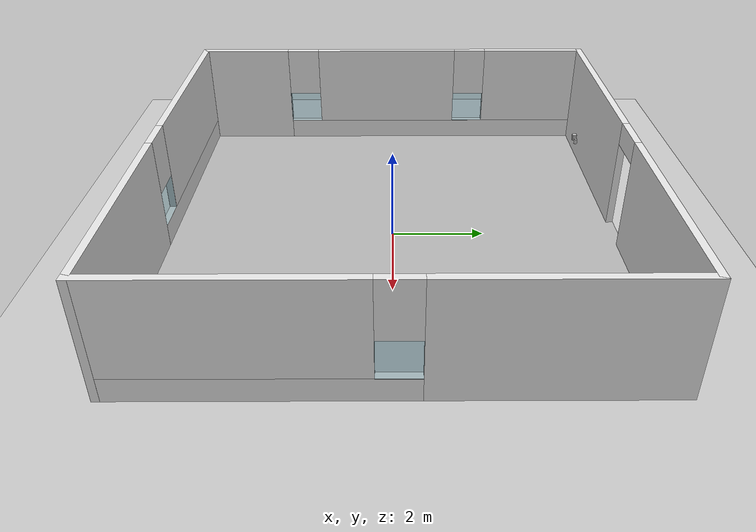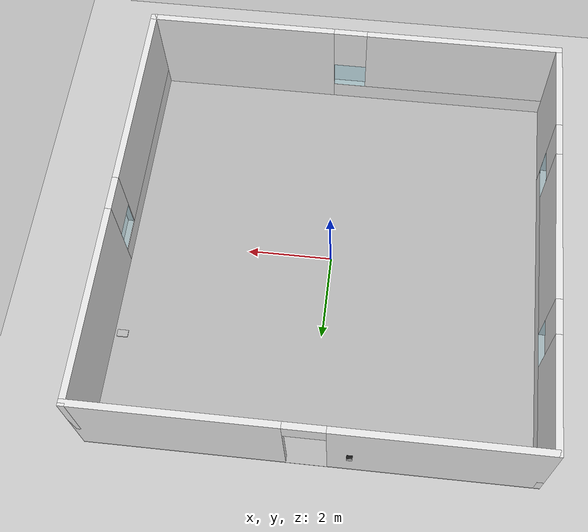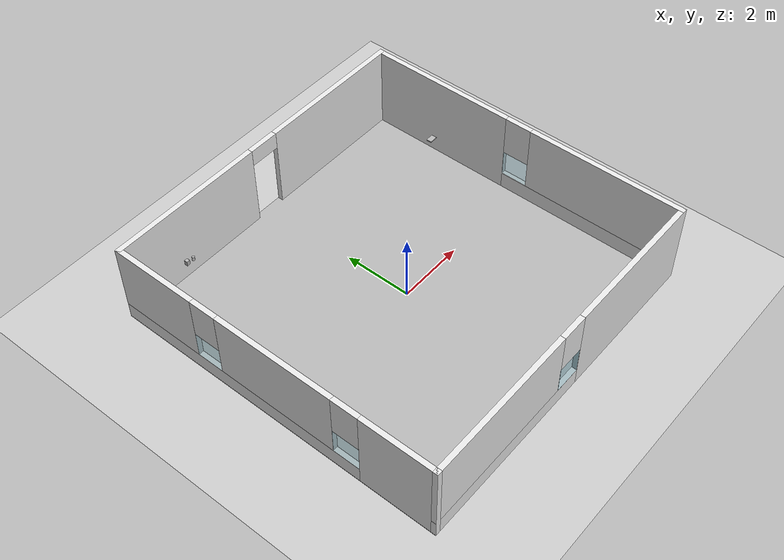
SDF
<sdf version="1.7">
 <world name="default">
  <model name="ground_plane">
   <static>1</static>
   <link name="link">
    <collision name="collision">
     <geometry><plane><normal>0 0 1</normal><size>100 100</size></plane></geometry>
     <surface><friction><ode><mu>100</mu><mu2>50</mu2></ode></friction></surface>
    </collision>
    <visual name="visual">
     <cast_shadows>0</cast_shadows>
     <geometry><plane><normal>0 0 1</normal><size>100 100</size></plane></geometry>
     <material>
      <script><uri>file://media/materials/scripts/gazebo.material</uri><name>Gazebo/Grey</name></script>
     </material>
    </visual>
   </link>
  </model>
  <model name="office_small_1">
   <model name="office_small">
    <pose>0.796663 0.043102 0 0 -0 0</pose>
    <link name="Wall_2">
     <pose>0 4.925 0 0 -0 0</pose>
     <visual name="Wall_2_Visual_0">
      <pose>-2.69024 0 1.25 0 -0 0</pose>
      <geometry><box><size>4.61951 0.15 2.5</size></box></geometry>
      <material>
       <script>
        <uri>model://office_small/materials/scripts</uri>
        <uri>model://office_small/materials/textures</uri>
        <name>wall_white</name>
       </script>
      </material>
     </visual>
     <collision name="Wall_2_Collision_0">
      <geometry><box><size>4.61951 0.15 2.5</size></box></geometry>
      <pose>-2.69024 0 1.25 0 -0 0</pose>
     </collision>
     <visual name="Wall_2_Visual_1">
      <pose>2.75976 0 1.25 0 -0 0</pose>
      <geometry><box><size>4.48049 0.15 2.5</size></box></geometry>
      <material>
       <script>
        <uri>model://office_small/materials/scripts</uri>
        <uri>model://office_small/materials/textures</uri>
        <name>wall_white</name>
       </script>
      </material>
     </visual>
     <collision name="Wall_2_Collision_1">
      <geometry><box><size>4.48049 0.15 2.5</size></box></geometry>
      <pose>2.75976 0 1.25 0 -0 0</pose>
     </collision>
     <visual name="Wall_2_Visual_2">
      <pose>0.06951 0 2.25 0 -0 0</pose>
      <geometry><box><size>0.9 0.15 0.5</size></box></geometry>
      <material>
       <script>
        <uri>model://office_small/materials/scripts</uri>
        <uri>model://office_small/materials/textures</uri>
        <name>wall_white</name>
       </script>
      </material>
     </visual>
     <collision name="Wall_2_Collision_2">
      <geometry><box><size>0.9 0.15 0.5</size></box></geometry>
      <pose>0.06951 0 2.25 0 -0 0</pose>
     </collision>
    </link>
    <link name="Wall_3">
     <pose>4.925 0 0 0 0 -1.5708</pose>
     <visual name="Wall_3_Visual_0">
      <pose>-2.74228 0 1.25 0 -0 0</pose>
      <geometry><box><size>4.51544 0.15 2.5</size></box></geometry>
      <material>
       <script>
        <uri>model://office_small/materials/scripts</uri>
        <uri>model://office_small/materials/textures</uri>
        <name>wall_white</name>
       </script>
      </material>
     </visual>
     <collision name="Wall_3_Collision_0">
      <geometry><box><size>4.51544 0.15 2.5</size></box></geometry>
      <pose>-2.74228 0 1.25 0 -0 0</pose>
     </collision>
     <visual name="Wall_3_Visual_1">
      <pose>2.25772 0 0.25 0 -0 0</pose>
      <geometry><box><size>5.48456 0.15 0.5</size></box></geometry>
      <material>
       <script>
        <uri>model://office_small/materials/scripts</uri>
        <uri>model://office_small/materials/textures</uri>
        <name>wall_white</name>
       </script>
      </material>
     </visual>
     <collision name="Wall_3_Collision_1">
      <geometry><box><size>5.48456 0.15 0.5</size></box></geometry>
      <pose>2.25772 0 0.25 0 -0 0</pose>
     </collision>
     <visual name="Wall_3_Visual_2">
      <pose>2.65772 0 1.5 0 -0 0</pose>
      <geometry><box><size>4.68456 0.15 2</size></box></geometry>
      <material>
       <script>
        <uri>model://office_small/materials/scripts</uri>
        <uri>model://office_small/materials/textures</uri>
        <name>wall_white</name>
       </script>
      </material>
     </visual>
     <collision name="Wall_3_Collision_2">
      <geometry><box><size>4.68456 0.15 2</size></box></geometry>
      <pose>2.65772 0 1.5 0 -0 0</pose>
     </collision>
     <visual name="Wall_3_Visual_3">
      <pose>-0.084559 0 1.9 0 -0 0</pose>
      <geometry><box><size>0.8 0.15 1.2</size></box></geometry>
      <material>
       <script>
        <uri>model://office_small/materials/scripts</uri>
        <uri>model://office_small/materials/textures</uri>
        <name>wall_white</name>
       </script>
      </material>
     </visual>
     <collision name="Wall_3_Collision_3">
      <geometry><box><size>0.8 0.15 1.2</size></box></geometry>
      <pose>-0.084559 0 1.9 0 -0 0</pose>
     </collision>
    </link>
    <link name="Wall_4">
     <pose>0 -4.925 0 0 -0 3.14159</pose>
     <visual name="Wall_4_Visual_0">
      <pose>-2.74632 0 1.25 0 -0 0</pose>
      <geometry><box><size>4.50736 0.15 2.5</size></box></geometry>
      <material>
       <script>
        <uri>model://office_small/materials/scripts</uri>
        <uri>model://office_small/materials/textures</uri>
        <name>wall_white</name>
       </script>
      </material>
     </visual>
     <collision name="Wall_4_Collision_0">
      <geometry><box><size>4.50736 0.15 2.5</size></box></geometry>
      <pose>-2.74632 0 1.25 0 -0 0</pose>
     </collision>
     <visual name="Wall_4_Visual_1">
      <pose>2.25368 0 0.25 0 -0 0</pose>
      <geometry><box><size>5.49264 0.15 0.5</size></box></geometry>
      <material>
       <script>
        <uri>model://office_small/materials/scripts</uri>
        <uri>model://office_small/materials/textures</uri>
        <name>wall_white</name>
       </script>
      </material>
     </visual>
     <collision name="Wall_4_Collision_1">
      <geometry><box><size>5.49264 0.15 0.5</size></box></geometry>
      <pose>2.25368 0 0.25 0 -0 0</pose>
     </collision>
     <visual name="Wall_4_Visual_2">
      <pose>2.65368 0 1.5 0 -0 0</pose>
      <geometry><box><size>4.69264 0.15 2</size></box></geometry>
      <material>
       <script>
        <uri>model://office_small/materials/scripts</uri>
        <uri>model://office_small/materials/textures</uri>
        <name>wall_white</name>
       </script>
      </material>
     </visual>
     <collision name="Wall_4_Collision_2">
      <geometry><box><size>4.69264 0.15 2</size></box></geometry>
      <pose>2.65368 0 1.5 0 -0 0</pose>
     </collision>
     <visual name="Wall_4_Visual_3">
      <pose>-0.09264 0 1.9 0 -0 0</pose>
      <geometry><box><size>0.8 0.15 1.2</size></box></geometry>
      <material>
       <script>
        <uri>model://office_small/materials/scripts</uri>
        <uri>model://office_small/materials/textures</uri>
        <name>wall_white</name>
       </script>
      </material>
     </visual>
     <collision name="Wall_4_Collision_3">
      <geometry><box><size>0.8 0.15 1.2</size></box></geometry>
      <pose>-0.09264 0 1.9 0 -0 0</pose>
     </collision>
    </link>
    <link name="Wall_5">
     <pose>-4.925 0 0 0 -0 1.5708</pose>
     <visual name="Wall_5_Visual_0">
      <pose>-3.88364 0 1.25 0 -0 0</pose>
      <geometry><box><size>2.23271 0.15 2.5</size></box></geometry>
      <material>
       <script>
        <uri>model://office_small/materials/scripts</uri>
        <uri>model://office_small/materials/textures</uri>
        <name>wall_white</name>
       </script>
      </material>
     </visual>
     <collision name="Wall_5_Collision_0">
      <geometry><box><size>2.23271 0.15 2.5</size></box></geometry>
      <pose>-3.88364 0 1.25 0 -0 0</pose>
     </collision>
     <visual name="Wall_5_Visual_1">
      <pose>1.11636 0 0.25 0 -0 0</pose>
      <geometry><box><size>7.76729 0.15 0.5</size></box></geometry>
      <material>
       <script>
        <uri>model://office_small/materials/scripts</uri>
        <uri>model://office_small/materials/textures</uri>
        <name>wall_white</name>
       </script>
      </material>
     </visual>
     <collision name="Wall_5_Collision_1">
      <geometry><box><size>7.76729 0.15 0.5</size></box></geometry>
      <pose>1.11636 0 0.25 0 -0 0</pose>
     </collision>
     <visual name="Wall_5_Visual_2">
      <pose>-0.169878 0 1.5 0 -0 0</pose>
      <geometry><box><size>3.59482 0.15 2</size></box></geometry>
      <material>
       <script>
        <uri>model://office_small/materials/scripts</uri>
        <uri>model://office_small/materials/textures</uri>
        <name>wall_white</name>
       </script>
      </material>
     </visual>
     <collision name="Wall_5_Collision_2">
      <geometry><box><size>3.59482 0.15 2</size></box></geometry>
      <pose>-0.169878 0 1.5 0 -0 0</pose>
     </collision>
     <visual name="Wall_5_Visual_3">
      <pose>3.71376 0 1.5 0 -0 0</pose>
      <geometry><box><size>2.57247 0.15 2</size></box></geometry>
      <material>
       <script>
        <uri>model://office_small/materials/scripts</uri>
        <uri>model://office_small/materials/textures</uri>
        <name>wall_white</name>
       </script>
      </material>
     </visual>
     <collision name="Wall_5_Collision_3">
      <geometry><box><size>2.57247 0.15 2</size></box></geometry>
      <pose>3.71376 0 1.5 0 -0 0</pose>
     </collision>
     <visual name="Wall_5_Visual_4">
      <pose>-2.36729 0 1.9 0 -0 0</pose>
      <geometry><box><size>0.8 0.15 1.2</size></box></geometry>
      <material>
       <script>
        <uri>model://office_small/materials/scripts</uri>
        <uri>model://office_small/materials/textures</uri>
        <name>wall_white</name>
       </script>
      </material>
     </visual>
     <collision name="Wall_5_Collision_4">
      <geometry><box><size>0.8 0.15 1.2</size></box></geometry>
      <pose>-2.36729 0 1.9 0 -0 0</pose>
     </collision>
     <visual name="Wall_5_Visual_5">
      <pose>2.02753 0 1.9 0 -0 0</pose>
      <geometry><box><size>0.8 0.15 1.2</size></box></geometry>
      <material>
       <script>
        <uri>model://office_small/materials/scripts</uri>
        <uri>model://office_small/materials/textures</uri>
        <name>wall_white</name>
       </script>
      </material>
     </visual>
     <collision name="Wall_5_Collision_5">
      <geometry><box><size>0.8 0.15 1.2</size></box></geometry>
      <pose>2.02753 0 1.9 0 -0 0</pose>
     </collision>
    </link>
    <static>1</static>
   </model>
   <model name="window">
    <link name="link_2">
     <visual name="visual">
      <pose>0 0 0.9 0 -0 0</pose>
      <geometry><box><size>0.8 0.15 0.8</size></box></geometry>
      <material>
       <lighting>1</lighting>
       <ambient>0.1 0.5 0.6 1</ambient>
       <diffuse>0.1 0.5 0.6 1</diffuse>
       <specular>0.01 0.01 0.01 1</specular>
       <emissive>0 0 0 1</emissive>
      </material>
      <transparency>0.7</transparency>
     </visual>
     <collision name="collision">
      <pose>0 0 0.9 0 -0 0</pose>
      <geometry><box><size>0.8 0.15 0.8</size></box></geometry>
     </collision>
    </link>
    <static>1</static>
    <pose>-4.12651 2.07152 0 0 -0 1.5706</pose>
   </model>
   <model name="window_0">
    <link name="link_2">
     <visual name="visual">
      <pose>0 0 0.9 0 -0 0</pose>
      <geometry><box><size>0.8 0.15 0.8</size></box></geometry>
      <material>
       <lighting>1</lighting>
       <ambient>0.1 0.5 0.6 1</ambient>
       <diffuse>0.1 0.5 0.6 1</diffuse>
       <specular>0.01 0.01 0.01 1</specular>
       <emissive>0 0 0 1</emissive>
      </material>
      <transparency>0.7</transparency>
     </visual>
     <collision name="collision">
      <pose>0 0 0.9 0 -0 0</pose>
      <geometry><box><size>0.8 0.15 0.8</size></box></geometry>
     </collision>
    </link>
    <static>1</static>
    <pose>-4.12726 -2.32854 0 0 -0 1.57</pose>
   </model>
   <model name="window_1">
    <link name="link_2">
     <visual name="visual">
      <pose>0 0 0.9 0 -0 0</pose>
      <geometry><box><size>0.8 0.15 0.8</size></box></geometry>
      <material>
       <lighting>1</lighting>
       <ambient>0.1 0.5 0.6 1</ambient>
       <diffuse>0.1 0.5 0.6 1</diffuse>
       <specular>0.01 0.01 0.01 1</specular>
       <emissive>0 0 0 1</emissive>
      </material>
      <transparency>0.7</transparency>
     </visual>
     <collision name="collision">
      <pose>0 0 0.9 0 -0 0</pose>
      <geometry><box><size>0.8 0.15 0.8</size></box></geometry>
     </collision>
    </link>
    <static>1</static>
    <pose>0.875059 -4.88342 0 0 -0 0</pose>
   </model>
   <model name="window_2">
    <link name="link_2">
     <visual name="visual">
      <pose>0 0 0.9 0 -0 0</pose>
      <geometry><box><size>0.8 0.15 0.8</size></box></geometry>
      <material>
       <lighting>1</lighting>
       <ambient>0.1 0.5 0.6 1</ambient>
       <diffuse>0.1 0.5 0.6 1</diffuse>
       <specular>0.01 0.01 0.01 1</specular>
       <emissive>0 0 0 1</emissive>
      </material>
      <transparency>0.7</transparency>
     </visual>
     <collision name="collision">
      <pose>0 0 0.9 0 -0 0</pose>
      <geometry><box><size>0.8 0.15 0.8</size></box></geometry>
     </collision>
    </link>
    <static>1</static>
    <pose>5.73592 0.126978 0 0 -0 1.57</pose>
   </model>
   <model name="Floor">
    <link name="main">
     <pose>0.795 0.05 0.01 0 -0 0</pose>
     <collision name="main_Collision"><geometry><box><size>10 10 0.01</size></box></geometry></collision>
     <visual name="main_Visual">
      <geometry><box><size>10 10 0.01</size></box></geometry>
      <material>
       <script>
        <uri>model://office_small/materials/scripts</uri>
        <uri>model://office_small/materials/textures</uri>
        <name>floor</name>
       </script>
      </material>
     </visual>
    </link>
    <static>1</static>
   </model>
   <static>0</static>
   <pose>-0.862718 -0.025462 0 0 -0 0</pose>
  </model>
  <model name="book_19">
   <link name="cover">
    <pose>0 -0.000108 0.015405 0 -0 0</pose>
    <visual name="visual">
     <geometry><box><size>0.245 0.16 0.03</size></box></geometry>
     <material>
      <script>
       <uri>model://book_19/materials/scripts</uri>
       <uri>model://book_19/materials/textures</uri>
       <name>book_19</name>
      </script>
     </material>
    </visual>
    <collision name="collision"><geometry><box><size>0.245 0.16 0.03</size></box></geometry></collision>
   </link>
   <link name="page">
    <pose>0 0.000608 0.015405 0 -0 0</pose>
    <visual name="visual">
     <geometry><box><size>0.24502 0.15862 0.028</size></box></geometry>
     <material>
      <lighting>1</lighting>
      <ambient>1 1 1 1</ambient>
      <diffuse>1 1 1 1</diffuse>
      <specular>0.01 0.01 0.01 1</specular>
      <emissive>0 0 0 1</emissive>
      <shader type="vertex"><normal_map>__default__</normal_map></shader>
     </material>
    </visual>
    <collision name="collision"><geometry><box><size>0.245 0.16 0.03</size></box></geometry></collision>
   </link>
   <static>1</static>
   <pose>4.39835 2.70804 0.766184 0 -0 0</pose>
  </model>
  <model name="tea_box">
   <link name="link">
    <pose>0 0 0.075 0 -0 0</pose>
    <visual name="visual">
     <geometry><box><size>0.1 0.1 0.15</size></box></geometry>
     <material>
      <script>
       <uri>model://tea_box/materials/scripts</uri>
       <uri>model://tea_box/materials/textures</uri>
       <name>tea_pat</name>
      </script>
     </material>
    </visual>
    <collision name="collision"><geometry><box><size>0.1 0.1 0.15</size></box></geometry></collision>
   </link>
   <static>1</static>
   <pose>-3.27945 4.66486 0.699417 0 -0 0</pose>
  </model>
  <model name="coffee_box">
   <link name="link_0">
    <visual name="visual">
     <pose>0 0 0.06 0 -0 0</pose>
     <geometry><cylinder><radius>0.04</radius><length>0.12</length></cylinder></geometry>
     <material>
      <script>
       <uri>model://coffee_box/materials/scripts</uri>
       <uri>model://coffee_box/materials/textures</uri>
       <name>coffee_pat</name>
      </script>
     </material>
    </visual>
    <collision name="collision">
     <geometry><cylinder><radius>0.04</radius><length>0.12</length></cylinder></geometry>
    </collision>
   </link>
   <static>1</static>
   <pose>-3.07493 4.65525 0.698978 0 -0 0</pose>
  </model>
  <model name="wheelchairButton">
   <static>1</static>
   <link name="link_button">
    <visual name="visual">
     <geometry>
      <mesh><uri>model://wheelchairButton/meshes/wheelchairButton.dae</uri><scale>1 1 1</scale></mesh>
     </geometry>
     <material>
      <script>
       <uri>model://wheelchairButton/materials/scripts</uri>
       <uri>model://wheelchairButton/materials/textures</uri>
       <name>button</name>
      </script>
     </material>
    </visual>
    <collision name="collision">
     <geometry>
      <mesh><uri>model://wheelchairButton/meshes/wheelchairButton.dae</uri><scale>1 1 1</scale></mesh>
     </geometry>
    </collision>
   </link>
   <static>1</static>
   <pose>-0.930105 5.01866 1.01673 -3.14158 -0.001515 0.004784</pose>
  </model>
 </world>
</sdf>
